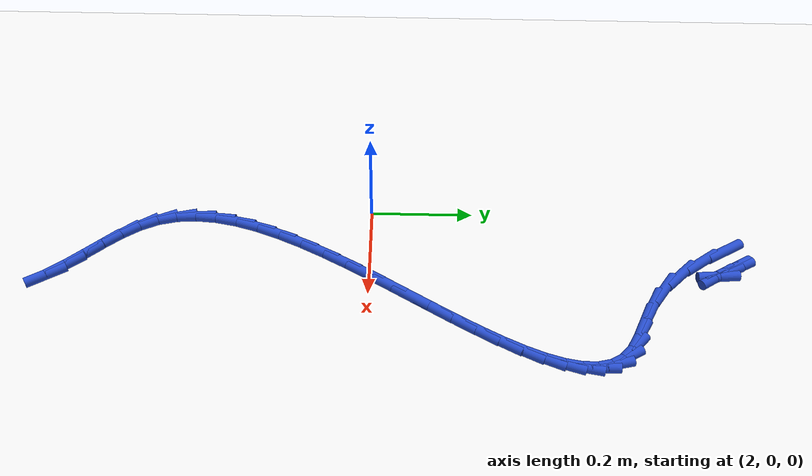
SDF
<sdf version="1.6">
 <world name="default">
  <model name="ground_plane">
   <static>1</static>
   <link name="link">
    <collision name="collision">
     <geometry><plane><normal>0 0 1</normal><size>100 100</size></plane></geometry>
     <surface><friction><ode><mu>100</mu><mu2>50</mu2></ode></friction></surface>
    </collision>
    <visual name="visual">
     <cast_shadows>0</cast_shadows>
     <geometry><plane><normal>0 0 1</normal><size>100 100</size></plane></geometry>
     <material>
      <script><uri>file://media/materials/scripts/gazebo.material</uri><name>Gazebo/WhiteGlow</name></script>
     </material>
    </visual>
   </link>
  </model>
  <model name="line">
   <link name="link_100">
    <pose>2.1318946199244793 0.6966315659013425 0.01 0 1.57 -1.075878222639596</pose>
    <collision name="collision">
     <geometry><cylinder><radius>0.01</radius><length>0.08</length></cylinder></geometry>
    </collision>
    <visual name="visual">
     <material>
      <script><name>Gazebo/Blue</name><uri>file://media/materials/scripts/gazebo.material</uri></script>
     </material>
     <geometry><cylinder><radius>0.01</radius><length>0.08</length></cylinder></geometry>
    </visual>
   </link>
   <link name="link_101">
    <pose>2.14432355474213 0.673603170234444 0.01 0 1.57 -1.102620440953358</pose>
    <collision name="collision">
     <geometry><cylinder><radius>0.01</radius><length>0.08</length></cylinder></geometry>
    </collision>
    <visual name="visual">
     <material>
      <script><name>Gazebo/Blue</name><uri>file://media/materials/scripts/gazebo.material</uri></script>
     </material>
     <geometry><cylinder><radius>0.01</radius><length>0.08</length></cylinder></geometry>
    </visual>
   </link>
   <link name="link_102">
    <pose>2.1509151495882306 0.6605678848810262 0.01 0 1.57 -1.4886165169433945</pose>
    <collision name="collision">
     <geometry><cylinder><radius>0.01</radius><length>0.08</length></cylinder></geometry>
    </collision>
    <visual name="visual">
     <material>
      <script><name>Gazebo/Blue</name><uri>file://media/materials/scripts/gazebo.material</uri></script>
     </material>
     <geometry><cylinder><radius>0.01</radius><length>0.08</length></cylinder></geometry>
    </visual>
   </link>
   <link name="link_103">
    <pose>2.1510630435023037 0.6587722999380539 0.01 0 1.57 -0.9975040696641818</pose>
    <collision name="collision">
     <geometry><cylinder><radius>0.01</radius><length>0.08</length></cylinder></geometry>
    </collision>
    <visual name="visual">
     <material>
      <script><name>Gazebo/Blue</name><uri>file://media/materials/scripts/gazebo.material</uri></script>
     </material>
     <geometry><cylinder><radius>0.01</radius><length>0.08</length></cylinder></geometry>
    </visual>
   </link>
   <link name="link_104">
    <pose>2.1441608755238732 0.6694630055024916 0.01 0 1.57 -1.0332179191490003</pose>
    <collision name="collision">
     <geometry><cylinder><radius>0.01</radius><length>0.08</length></cylinder></geometry>
    </collision>
    <visual name="visual">
     <material>
      <script><name>Gazebo/Blue</name><uri>file://media/materials/scripts/gazebo.material</uri></script>
     </material>
     <geometry><cylinder><radius>0.01</radius><length>0.08</length></cylinder></geometry>
    </visual>
   </link>
   <link name="link_105">
    <pose>2.1296082066540247 0.6938743912011364 0.01 0 1.57 -1.0403126726256187</pose>
    <collision name="collision">
     <geometry><cylinder><radius>0.01</radius><length>0.08</length></cylinder></geometry>
    </collision>
    <visual name="visual">
     <material>
      <script><name>Gazebo/Blue</name><uri>file://media/materials/scripts/gazebo.material</uri></script>
     </material>
     <geometry><cylinder><radius>0.01</radius><length>0.08</length></cylinder></geometry>
    </visual>
   </link>
   <link name="link_114">
    <pose>2.08883024412514 0.6838508638089086 0.01 0 1.57 -1.0433174606435398</pose>
    <collision name="collision">
     <geometry><cylinder><radius>0.01</radius><length>0.08</length></cylinder></geometry>
    </collision>
    <visual name="visual">
     <material>
      <script><name>Gazebo/Blue</name><uri>file://media/materials/scripts/gazebo.material</uri></script>
     </material>
     <geometry><cylinder><radius>0.01</radius><length>0.08</length></cylinder></geometry>
    </visual>
   </link>
   <link name="link_115">
    <pose>2.117642420501618 0.6343909028893131 0.01 0 1.57 -0.943577213989851</pose>
    <collision name="collision">
     <geometry><cylinder><radius>0.01</radius><length>0.08</length></cylinder></geometry>
    </collision>
    <visual name="visual">
     <material>
      <script><name>Gazebo/Blue</name><uri>file://media/materials/scripts/gazebo.material</uri></script>
     </material>
     <geometry><cylinder><radius>0.01</radius><length>0.08</length></cylinder></geometry>
    </visual>
   </link>
   <link name="link_116">
    <pose>2.1504777568161684 0.589092293120107 0.01 0 1.57 -0.7954595919631987</pose>
    <collision name="collision">
     <geometry><cylinder><radius>0.01</radius><length>0.08</length></cylinder></geometry>
    </collision>
    <visual name="visual">
     <material>
      <script><name>Gazebo/Blue</name><uri>file://media/materials/scripts/gazebo.material</uri></script>
     </material>
     <geometry><cylinder><radius>0.01</radius><length>0.08</length></cylinder></geometry>
    </visual>
   </link>
   <link name="link_117">
    <pose>2.186227805007122 0.5526155153562666 0.01 0 1.57 -0.6144535382288785</pose>
    <collision name="collision">
     <geometry><cylinder><radius>0.01</radius><length>0.08</length></cylinder></geometry>
    </collision>
    <visual name="visual">
     <material>
      <script><name>Gazebo/Blue</name><uri>file://media/materials/scripts/gazebo.material</uri></script>
     </material>
     <geometry><cylinder><radius>0.01</radius><length>0.08</length></cylinder></geometry>
    </visual>
   </link>
   <link name="link_118">
    <pose>2.22331899575489 0.5264451343044204 0.01 0 1.57 -0.4846430774673752</pose>
    <collision name="collision">
     <geometry><cylinder><radius>0.01</radius><length>0.08</length></cylinder></geometry>
    </collision>
    <visual name="visual">
     <material>
      <script><name>Gazebo/Blue</name><uri>file://media/materials/scripts/gazebo.material</uri></script>
     </material>
     <geometry><cylinder><radius>0.01</radius><length>0.08</length></cylinder></geometry>
    </visual>
   </link>
   <link name="link_119">
    <pose>2.259494153052638 0.5073979479756568 0.01 0 1.57 -0.439239289237527</pose>
    <collision name="collision">
     <geometry><cylinder><radius>0.01</radius><length>0.08</length></cylinder></geometry>
    </collision>
    <visual name="visual">
     <material>
      <script><name>Gazebo/Blue</name><uri>file://media/materials/scripts/gazebo.material</uri></script>
     </material>
     <geometry><cylinder><radius>0.01</radius><length>0.08</length></cylinder></geometry>
    </visual>
   </link>
   <link name="link_120">
    <pose>2.292441452656723 0.4919176082072182 0.01 0 1.57 -0.5138587838130647</pose>
    <collision name="collision">
     <geometry><cylinder><radius>0.01</radius><length>0.08</length></cylinder></geometry>
    </collision>
    <visual name="visual">
     <material>
      <script><name>Gazebo/Blue</name><uri>file://media/materials/scripts/gazebo.material</uri></script>
     </material>
     <geometry><cylinder><radius>0.01</radius><length>0.08</length></cylinder></geometry>
    </visual>
   </link>
   <link name="link_121">
    <pose>2.3198490703235017 0.47644776683634743 0.01 0 1.57 -0.7452032431913196</pose>
    <collision name="collision">
     <geometry><cylinder><radius>0.01</radius><length>0.08</length></cylinder></geometry>
    </collision>
    <visual name="visual">
     <material>
      <script><name>Gazebo/Blue</name><uri>file://media/materials/scripts/gazebo.material</uri></script>
     </material>
     <geometry><cylinder><radius>0.01</radius><length>0.08</length></cylinder></geometry>
    </visual>
   </link>
   <link name="link_122">
    <pose>2.3398434475775955 0.45799942433265517 0.01 0 1.57 -1.046379387075916</pose>
    <collision name="collision">
     <geometry><cylinder><radius>0.01</radius><length>0.08</length></cylinder></geometry>
    </collision>
    <visual name="visual">
     <material>
      <script><name>Gazebo/Blue</name><uri>file://media/materials/scripts/gazebo.material</uri></script>
     </material>
     <geometry><cylinder><radius>0.01</radius><length>0.08</length></cylinder></geometry>
    </visual>
   </link>
   <link name="link_123">
    <pose>2.3525041034084584 0.4361119005299811 0.01 0 1.57 -1.337880485040643</pose>
    <collision name="collision">
     <geometry><cylinder><radius>0.01</radius><length>0.08</length></cylinder></geometry>
    </collision>
    <visual name="visual">
     <material>
      <script><name>Gazebo/Blue</name><uri>file://media/materials/scripts/gazebo.material</uri></script>
     </material>
     <geometry><cylinder><radius>0.01</radius><length>0.08</length></cylinder></geometry>
    </visual>
   </link>
   <link name="link_124">
    <pose>2.3584544062801465 0.41102854527767874 0.01 0 1.57 1.5659219267063484</pose>
    <collision name="collision">
     <geometry><cylinder><radius>0.01</radius><length>0.08</length></cylinder></geometry>
    </collision>
    <visual name="visual">
     <material>
      <script><name>Gazebo/Blue</name><uri>file://media/materials/scripts/gazebo.material</uri></script>
     </material>
     <geometry><cylinder><radius>0.01</radius><length>0.08</length></cylinder></geometry>
    </visual>
   </link>
   <link name="link_125">
    <pose>2.3583177474560455 0.38299273793953675 0.01 0 1.57 1.3906200920603378</pose>
    <collision name="collision">
     <geometry><cylinder><radius>0.01</radius><length>0.08</length></cylinder></geometry>
    </collision>
    <visual name="visual">
     <material>
      <script><name>Gazebo/Blue</name><uri>file://media/materials/scripts/gazebo.material</uri></script>
     </material>
     <geometry><cylinder><radius>0.01</radius><length>0.08</length></cylinder></geometry>
    </visual>
   </link>
   <link name="link_126">
    <pose>2.352717518199539 0.35224785787934354 0.01 0 1.57 1.2662087240711506</pose>
    <collision name="collision">
     <geometry><cylinder><radius>0.01</radius><length>0.08</length></cylinder></geometry>
    </collision>
    <visual name="visual">
     <material>
      <script><name>Gazebo/Blue</name><uri>file://media/materials/scripts/gazebo.material</uri></script>
     </material>
     <geometry><cylinder><radius>0.01</radius><length>0.08</length></cylinder></geometry>
    </visual>
   </link>
   <link name="link_127">
    <pose>2.3422771097740123 0.31903728446088914 0.01 0 1.57 1.1785691548426702</pose>
    <collision name="collision">
     <geometry><cylinder><radius>0.01</radius><length>0.08</length></cylinder></geometry>
    </collision>
    <visual name="visual">
     <material>
      <script><name>Gazebo/Blue</name><uri>file://media/materials/scripts/gazebo.material</uri></script>
     </material>
     <geometry><cylinder><radius>0.01</radius><length>0.08</length></cylinder></geometry>
    </visual>
   </link>
   <link name="link_128">
    <pose>2.327619913442849 0.2836043970479619 0.01 0 1.57 1.116932381565788</pose>
    <collision name="collision">
     <geometry><cylinder><radius>0.01</radius><length>0.08</length></cylinder></geometry>
    </collision>
    <visual name="visual">
     <material>
      <script><name>Gazebo/Blue</name><uri>file://media/materials/scripts/gazebo.material</uri></script>
     </material>
     <geometry><cylinder><radius>0.01</radius><length>0.08</length></cylinder></geometry>
    </visual>
   </link>
   <link name="link_129">
    <pose>2.309369320469433 0.24619257500435066 0.01 0 1.57 1.0740621912106667</pose>
    <collision name="collision">
     <geometry><cylinder><radius>0.01</radius><length>0.08</length></cylinder></geometry>
    </collision>
    <visual name="visual">
     <material>
      <script><name>Gazebo/Blue</name><uri>file://media/materials/scripts/gazebo.material</uri></script>
     </material>
     <geometry><cylinder><radius>0.01</radius><length>0.08</length></cylinder></geometry>
    </visual>
   </link>
   <link name="link_130">
    <pose>2.288148722117149 0.20704519769384466 0.01 0 1.57 1.0452811853625557</pose>
    <collision name="collision">
     <geometry><cylinder><radius>0.01</radius><length>0.08</length></cylinder></geometry>
    </collision>
    <visual name="visual">
     <material>
      <script><name>Gazebo/Blue</name><uri>file://media/materials/scripts/gazebo.material</uri></script>
     </material>
     <geometry><cylinder><radius>0.01</radius><length>0.08</length></cylinder></geometry>
    </visual>
   </link>
   <link name="link_131">
    <pose>2.264581509649381 0.1664056444802327 0.01 0 1.57 1.0276180135974027</pose>
    <collision name="collision">
     <geometry><cylinder><radius>0.01</radius><length>0.08</length></cylinder></geometry>
    </collision>
    <visual name="visual">
     <material>
      <script><name>Gazebo/Blue</name><uri>file://media/materials/scripts/gazebo.material</uri></script>
     </material>
     <geometry><cylinder><radius>0.01</radius><length>0.08</length></cylinder></geometry>
    </visual>
   </link>
   <link name="link_132">
    <pose>2.2392910743295147 0.12451729472730377 0.01 0 1.57 1.0192410730506003</pose>
    <collision name="collision">
     <geometry><cylinder><radius>0.01</radius><length>0.08</length></cylinder></geometry>
    </collision>
    <visual name="visual">
     <material>
      <script><name>Gazebo/Blue</name><uri>file://media/materials/scripts/gazebo.material</uri></script>
     </material>
     <geometry><cylinder><radius>0.01</radius><length>0.08</length></cylinder></geometry>
    </visual>
   </link>
   <link name="link_133">
    <pose>2.212900807420932 0.0816235277988456 0.01 0 1.57 1.019114817488445</pose>
    <collision name="collision">
     <geometry><cylinder><radius>0.01</radius><length>0.08</length></cylinder></geometry>
    </collision>
    <visual name="visual">
     <material>
      <script><name>Gazebo/Blue</name><uri>file://media/materials/scripts/gazebo.material</uri></script>
     </material>
     <geometry><cylinder><radius>0.01</radius><length>0.08</length></cylinder></geometry>
    </visual>
   </link>
   <link name="link_134">
    <pose>2.1860341001870203 0.03796772305864961 0.01 0 1.57 1.0268044859644845</pose>
    <collision name="collision">
     <geometry><cylinder><radius>0.01</radius><length>0.08</length></cylinder></geometry>
    </collision>
    <visual name="visual">
     <material>
      <script><name>Gazebo/Blue</name><uri>file://media/materials/scripts/gazebo.material</uri></script>
     </material>
     <geometry><cylinder><radius>0.01</radius><length>0.08</length></cylinder></geometry>
    </visual>
   </link>
   <link name="link_135">
    <pose>2.1593143438911615 -0.0062067401294965685 0.01 0 1.57 1.042379558698578</pose>
    <collision name="collision">
     <geometry><cylinder><radius>0.01</radius><length>0.08</length></cylinder></geometry>
    </collision>
    <visual name="visual">
     <material>
      <script><name>Gazebo/Blue</name><uri>file://media/materials/scripts/gazebo.material</uri></script>
     </material>
     <geometry><cylinder><radius>0.01</radius><length>0.08</length></cylinder></geometry>
    </visual>
   </link>
   <link name="link_136">
    <pose>2.133364929796741 -0.0506564824018038 0.01 0 1.57 1.0663876435625177</pose>
    <collision name="collision">
     <geometry><cylinder><radius>0.01</radius><length>0.08</length></cylinder></geometry>
    </collision>
    <visual name="visual">
     <material>
      <script><name>Gazebo/Blue</name><uri>file://media/materials/scripts/gazebo.material</uri></script>
     </material>
     <geometry><cylinder><radius>0.01</radius><length>0.08</length></cylinder></geometry>
    </visual>
   </link>
   <link name="link_137">
    <pose>2.108809249167143 -0.09513812439448327 0.01 0 1.57 1.0998841932149892</pose>
    <collision name="collision">
     <geometry><cylinder><radius>0.01</radius><length>0.08</length></cylinder></geometry>
    </collision>
    <visual name="visual">
     <material>
      <script><name>Gazebo/Blue</name><uri>file://media/materials/scripts/gazebo.material</uri></script>
     </material>
     <geometry><cylinder><radius>0.01</radius><length>0.08</length></cylinder></geometry>
    </visual>
   </link>
   <link name="link_138">
    <pose>2.0862706932657513 -0.13940828674374603 0.01 0 1.57 1.144509490279703</pose>
    <collision name="collision">
     <geometry><cylinder><radius>0.01</radius><length>0.08</length></cylinder></geometry>
    </collision>
    <visual name="visual">
     <material>
      <script><name>Gazebo/Blue</name><uri>file://media/materials/scripts/gazebo.material</uri></script>
     </material>
     <geometry><cylinder><radius>0.01</radius><length>0.08</length></cylinder></geometry>
    </visual>
   </link>
   <link name="link_139">
    <pose>2.0663726533559506 -0.1832235900858029 0.01 0 1.57 1.2025996452353525</pose>
    <collision name="collision">
     <geometry><cylinder><radius>0.01</radius><length>0.08</length></cylinder></geometry>
    </collision>
    <visual name="visual">
     <material>
      <script><name>Gazebo/Blue</name><uri>file://media/materials/scripts/gazebo.material</uri></script>
     </material>
     <geometry><cylinder><radius>0.01</radius><length>0.08</length></cylinder></geometry>
    </visual>
   </link>
   <link name="link_140">
    <pose>2.0497385207011245 -0.22634065505686643 0.01 0 1.57 1.2772916874694311</pose>
    <collision name="collision">
     <geometry><cylinder><radius>0.01</radius><length>0.08</length></cylinder></geometry>
    </collision>
    <visual name="visual">
     <material>
      <script><name>Gazebo/Blue</name><uri>file://media/materials/scripts/gazebo.material</uri></script>
     </material>
     <geometry><cylinder><radius>0.01</radius><length>0.08</length></cylinder></geometry>
    </visual>
   </link>
   <link name="link_141">
    <pose>2.036991686564659 -0.26851610229314504 0.01 0 1.57 1.3725082625226237</pose>
    <collision name="collision">
     <geometry><cylinder><radius>0.01</radius><length>0.08</length></cylinder></geometry>
    </collision>
    <visual name="visual">
     <material>
      <script><name>Gazebo/Blue</name><uri>file://media/materials/scripts/gazebo.material</uri></script>
     </material>
     <geometry><cylinder><radius>0.01</radius><length>0.08</length></cylinder></geometry>
    </visual>
   </link>
   <link name="link_142">
    <pose>2.0287555422099377 -0.30950655243085107 0.01 0 1.57 1.4925464002351994</pose>
    <collision name="collision">
     <geometry><cylinder><radius>0.01</radius><length>0.08</length></cylinder></geometry>
    </collision>
    <visual name="visual">
     <material>
      <script><name>Gazebo/Blue</name><uri>file://media/materials/scripts/gazebo.material</uri></script>
     </material>
     <geometry><cylinder><radius>0.01</radius><length>0.08</length></cylinder></geometry>
    </visual>
   </link>
   <link name="link_143">
    <pose>2.0256534789003435 -0.3490686261061955 0.01 0 1.57 -1.5008292574656166</pose>
    <collision name="collision">
     <geometry><cylinder><radius>0.01</radius><length>0.08</length></cylinder></geometry>
    </collision>
    <visual name="visual">
     <material>
      <script><name>Gazebo/Blue</name><uri>file://media/materials/scripts/gazebo.material</uri></script>
     </material>
     <geometry><cylinder><radius>0.01</radius><length>0.08</length></cylinder></geometry>
    </visual>
   </link>
   <link name="link_144">
    <pose>2.028308887899263 -0.3869589439553895 0.01 0 1.57 -1.324706699345845</pose>
    <collision name="collision">
     <geometry><cylinder><radius>0.01</radius><length>0.08</length></cylinder></geometry>
    </collision>
    <visual name="visual">
     <material>
      <script><name>Gazebo/Blue</name><uri>file://media/materials/scripts/gazebo.material</uri></script>
     </material>
     <geometry><cylinder><radius>0.01</radius><length>0.08</length></cylinder></geometry>
    </visual>
   </link>
   <link name="link_145">
    <pose>2.0373451604700787 -0.4229341266146439 0.01 0 1.57 -1.1305339934765934</pose>
    <collision name="collision">
     <geometry><cylinder><radius>0.01</radius><length>0.08</length></cylinder></geometry>
    </collision>
    <visual name="visual">
     <material>
      <script><name>Gazebo/Blue</name><uri>file://media/materials/scripts/gazebo.material</uri></script>
     </material>
     <geometry><cylinder><radius>0.01</radius><length>0.08</length></cylinder></geometry>
    </visual>
   </link>
   <link name="link_146">
    <pose>2.0532905284994682 -0.45678115007533193 0.01 0 1.57 -0.9700765452277219</pose>
    <collision name="collision">
     <geometry><cylinder><radius>0.01</radius><length>0.08</length></cylinder></geometry>
    </collision>
    <visual name="visual">
     <material>
      <script><name>Gazebo/Blue</name><uri>file://media/materials/scripts/gazebo.material</uri></script>
     </material>
     <geometry><cylinder><radius>0.01</radius><length>0.08</length></cylinder></geometry>
    </visual>
   </link>
   <link name="link_147">
    <pose>2.0752001220463083 -0.4887569022883198 0.01 0 1.57 -0.8729970154632939</pose>
    <collision name="collision">
     <geometry><cylinder><radius>0.01</radius><length>0.08</length></cylinder></geometry>
    </collision>
    <visual name="visual">
     <material>
      <script><name>Gazebo/Blue</name><uri>file://media/materials/scripts/gazebo.material</uri></script>
     </material>
     <geometry><cylinder><radius>0.01</radius><length>0.08</length></cylinder></geometry>
    </visual>
   </link>
   <link name="link_148">
    <pose>2.1009693534086566 -0.5194882152471467 0.01 0 1.57 -0.8310266024234942</pose>
    <collision name="collision">
     <geometry><cylinder><radius>0.01</radius><length>0.08</length></cylinder></geometry>
    </collision>
    <visual name="visual">
     <material>
      <script><name>Gazebo/Blue</name><uri>file://media/materials/scripts/gazebo.material</uri></script>
     </material>
     <geometry><cylinder><radius>0.01</radius><length>0.08</length></cylinder></geometry>
    </visual>
   </link>
   <link name="link_149">
    <pose>2.128462278586159 -0.5496119234444 0.01 0 1.57 -0.8390260402774172</pose>
    <collision name="collision">
     <geometry><cylinder><radius>0.01</radius><length>0.08</length></cylinder></geometry>
    </collision>
    <visual name="visual">
     <material>
      <script><name>Gazebo/Blue</name><uri>file://media/materials/scripts/gazebo.material</uri></script>
     </material>
     <geometry><cylinder><radius>0.01</radius><length>0.08</length></cylinder></geometry>
    </visual>
   </link>
   <link name="link_150">
    <pose>2.155542953578459 -0.5797648613726647 0.01 0 1.57 -0.8984881470803026</pose>
    <collision name="collision">
     <geometry><cylinder><radius>0.01</radius><length>0.08</length></cylinder></geometry>
    </collision>
    <visual name="visual">
     <material>
      <script><name>Gazebo/Blue</name><uri>file://media/materials/scripts/gazebo.material</uri></script>
     </material>
     <geometry><cylinder><radius>0.01</radius><length>0.08</length></cylinder></geometry>
    </visual>
   </link>
   <link name="link_151">
    <pose>2.1800754343852033 -0.6105838635245283 0.01 0 1.57 -1.0173139707037546</pose>
    <collision name="collision">
     <geometry><cylinder><radius>0.01</radius><length>0.08</length></cylinder></geometry>
    </collision>
    <visual name="visual">
     <material>
      <script><name>Gazebo/Blue</name><uri>file://media/materials/scripts/gazebo.material</uri></script>
     </material>
     <geometry><cylinder><radius>0.01</radius><length>0.08</length></cylinder></geometry>
    </visual>
   </link>
  </model>
 </world>
</sdf>
